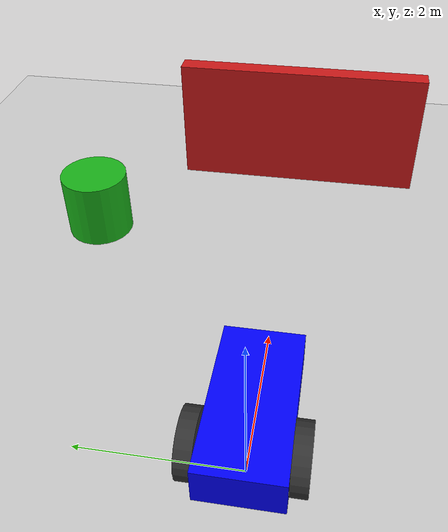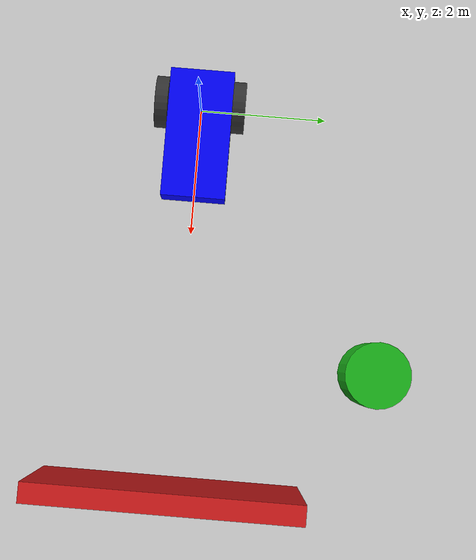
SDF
<?xml version="1.0" ?>
<sdf version="1.8">
  <world name="mundo_sensores">

    <!-- Física: cada cuánto avanza el tiempo de simulación. -->
    <physics name="1ms" type="ignored">
      <max_step_size>0.001</max_step_size>
      <real_time_factor>1.0</real_time_factor>
    </physics>

    <!-- ====== SISTEMAS DEL MUNDO ======================================= -->
    <!-- Motor de física: integra el movimiento de todos los cuerpos.      -->
    <plugin filename="ignition-gazebo-physics-system"
            name="ignition::gazebo::systems::Physics">
    </plugin>
    <!-- Procesa comandos del usuario (crear/borrar/mover modelos).        -->
    <plugin filename="ignition-gazebo-user-commands-system"
            name="ignition::gazebo::systems::UserCommands">
    </plugin>
    <!-- Difunde el estado de la escena a la GUI (para verlo en pantalla). -->
    <plugin filename="ignition-gazebo-scene-broadcaster-system"
            name="ignition::gazebo::systems::SceneBroadcaster">
    </plugin>

    <!-- ¡NUEVO! Sistema de SENSORES: sin esto la cámara y el LIDAR NO
         publican nada (necesitan renderizar la escena con ogre2). -->
    <plugin filename="ignition-gazebo-sensors-system"
            name="ignition::gazebo::systems::Sensors">
      <render_engine>ogre2</render_engine>
    </plugin>

    <plugin filename="ignition-gazebo-imu-system"
            name="ignition::gazebo::systems::Imu">
    </plugin>

    <!-- Luz tipo sol: ilumina y proyecta sombras (la cámara necesita luz). -->
    <light type="directional" name="sol">
      <cast_shadows>true</cast_shadows>
      <pose>0 0 10 0 0 0</pose>
      <diffuse>0.8 0.8 0.8 1</diffuse>
      <specular>0.2 0.2 0.2 1</specular>
      <direction>-0.5 0.1 -0.9</direction>
    </light>

    <!-- Suelo: un plano infinito sobre el que rueda el robot. -->
    <model name="suelo">
      <static>true</static>
      <link name="link">
        <collision name="collision">
          <geometry>
            <plane><normal>0 0 1</normal><size>100 100</size></plane>
          </geometry>
        </collision>
        <visual name="visual">
          <geometry>
            <plane><normal>0 0 1</normal><size>100 100</size></plane>
          </geometry>
          <material>
            <ambient>0.8 0.8 0.8 1</ambient>
            <diffuse>0.8 0.8 0.8 1</diffuse>
          </material>
        </visual>
      </link>
    </model>

    <!-- ====== OBSTÁCULOS: algo que VER y MEDIR ========================= -->
    <!-- Sin obstáculos, la cámara ve gris y el LIDAR da "infinito". Estos
         objetos hacen que los sensores tengan algo que reportar.          -->

    <!-- Pared roja al frente del robot (la cámara la verá; el LIDAR la mide). -->
    <model name="pared_roja">
      <static>true</static>
      <pose>6 0 1 0 0 0</pose>
      <link name="link">
        <collision name="collision">
          <geometry><box><size>0.3 4 2</size></box></geometry>
        </collision>
        <visual name="visual">
          <geometry><box><size>0.3 4 2</size></box></geometry>
          <material>
            <ambient>0.8 0.1 0.1 1</ambient>
            <diffuse>0.8 0.1 0.1 1</diffuse>
          </material>
        </visual>
      </link>
    </model>

    <!-- Cilindro verde a un costado (otro eco para el LIDAR). -->
    <model name="cilindro_verde">
      <static>true</static>
      <pose>4 3 0.5 0 0 0</pose>
      <link name="link">
        <collision name="collision">
          <geometry><cylinder><radius>0.5</radius><length>1.0</length></cylinder></geometry>
        </collision>
        <visual name="visual">
          <geometry><cylinder><radius>0.5</radius><length>1.0</length></cylinder></geometry>
          <material>
            <ambient>0.1 0.7 0.1 1</ambient>
            <diffuse>0.1 0.7 0.1 1</diffuse>
          </material>
        </visual>
      </link>
    </model>

    <!-- ====== EL ROBOT (el mismo de la clase pasada) =================== -->
    <model name="robot_azul" canonical_link="chasis">
      <pose>0 0 0 0 0 0</pose>

      <!-- CHASIS: cuerpo principal. Aquí colgaremos los sensores. -->
      <link name="chasis">
        <pose relative_to="__model__">0.5 0 0.4 0 0 0</pose>

        <inertial>
          <mass>1.14395</mass>
          <inertia>
            <ixx>0.126164</ixx>
            <iyy>0.416519</iyy>
            <izz>0.481014</izz>
            <ixy>0</ixy><ixz>0</ixz><iyz>0</iyz>
          </inertia>
        </inertial>

        <visual name="visual">
          <geometry><box><size>2.0 1.0 0.5</size></box></geometry>
          <material>
            <ambient>0.0 0.0 1.0 1</ambient>
            <diffuse>0.0 0.0 1.0 1</diffuse>
            <specular>0.0 0.0 1.0 1</specular>
          </material>
        </visual>

        <collision name="collision">
          <geometry><box><size>2.0 1.0 0.5</size></box></geometry>
        </collision>

        <!-- SENSOR 1: CÁMARA RGB                                          -->
        <!-- Va en la cara delantera del chasis (+X local), mirando al     -->
        <!-- frente. El eje óptico de la cámara apunta por su +X.          -->
        <sensor name="camara_rgb" type="camera">
          <pose>1.0 0 0.2 0 0 0</pose>   <!-- al frente y un poco arriba -->
          <topic>camara</topic>          <!-- gz topic: /camara -->
          <update_rate>30</update_rate>  <!-- 30 imágenes por segundo -->
          <always_on>1</always_on>
          <visualize>true</visualize>
          <camera>
            <horizontal_fov>1.047</horizontal_fov>   <!-- ~60° de apertura -->
            <image>
              <width>640</width>
              <height>480</height>
              <format>R8G8B8</format>                <!-- color RGB de 8 bits -->
            </image>
            <clip>
              <near>0.1</near>   <!-- más cerca de 0.1 m no se ve -->
              <far>100</far>     <!-- más lejos de 100 m no se ve -->
            </clip>
          </camera>
        </sensor>

        <!-- SENSOR 2: LIDAR 2D (gpu_lidar)                                -->
        <!-- Va arriba del chasis. Barre un abanico horizontal alrededor   -->
        <!-- de su +X y devuelve la distancia a lo que toca cada rayo.     -->
        <sensor name="lidar_2d" type="gpu_lidar">
          <pose>0 0 0.4 0 0 0</pose>     <!-- sobre el techo del chasis -->
          <topic>escaner</topic>         <!-- gz topic: /escaner -->
          <update_rate>10</update_rate>  <!-- 10 barridos por segundo -->
          <always_on>1</always_on>
          <visualize>true</visualize>
          <lidar>
            <scan>
              <horizontal>
                <samples>360</samples>        <!-- 360 rayos por barrido -->
                <resolution>1</resolution>
                <min_angle>-3.14159</min_angle>
                <max_angle>3.14159</max_angle>   <!-- +180° (vuelta completa) -->
              </horizontal>
              <vertical>
                <samples>1</samples>          <!-- 1 sola fila = LIDAR 2D -->
                <resolution>1</resolution>
                <min_angle>0</min_angle>
                <max_angle>0</max_angle>
              </vertical>
            </scan>
            <range>
              <min>0.12</min>      <!-- distancia mínima medible -->
              <max>12.0</max>      <!-- distancia máxima medible -->
              <resolution>0.01</resolution>
            </range>
          </lidar>
        </sensor>

        <!-- SENSOR 3: IMU                                                 -->
        <!-- No "ve" nada: siente la aceleración lineal y la velocidad     -->
        <!-- angular del chasis. Le añadimos un poco de RUIDO para que se  -->
        <!-- parezca a un sensor real (un IMU perfecto no existe).         -->
        <sensor name="imu_sensor" type="imu">
          <pose>0 0 0 0 0 0</pose>       <!-- en el centro del chasis -->
          <topic>imu</topic>             <!-- gz topic: /imu -->
          <update_rate>100</update_rate> <!-- 100 muestras por segundo -->
          <always_on>1</always_on>
          <imu>
            <angular_velocity>
              <x><noise type="gaussian"><mean>0</mean><stddev>0.009</stddev></noise></x>
              <y><noise type="gaussian"><mean>0</mean><stddev>0.009</stddev></noise></y>
              <z><noise type="gaussian"><mean>0</mean><stddev>0.009</stddev></noise></z>
            </angular_velocity>
            <linear_acceleration>
              <x><noise type="gaussian"><mean>0</mean><stddev>0.021</stddev></noise></x>
              <y><noise type="gaussian"><mean>0</mean><stddev>0.021</stddev></noise></y>
              <z><noise type="gaussian"><mean>0</mean><stddev>0.021</stddev></noise></z>
            </linear_acceleration>
          </imu>
        </sensor>
      </link>

      <!-- RUEDA IZQUIERDA -->
      <link name="rueda_izquierda">
        <pose relative_to="chasis">-0.5 0.6 0 -1.5707 0 0</pose>
        <inertial>
          <mass>1</mass>
          <inertia>
            <ixx>0.145833</ixx>
            <iyy>0.145833</iyy>
            <izz>0.125</izz>
            <ixy>0</ixy><ixz>0</ixz><iyz>0</iyz>
          </inertia>
        </inertial>
        <visual name="visual">
          <geometry><cylinder><radius>0.4</radius><length>0.2</length></cylinder></geometry>
          <material>
            <ambient>0.2 0.2 0.2 1</ambient>
            <diffuse>0.2 0.2 0.2 1</diffuse>
          </material>
        </visual>
        <collision name="collision">
          <geometry><cylinder><radius>0.4</radius><length>0.2</length></cylinder></geometry>
        </collision>
      </link>

      <!-- RUEDA DERECHA -->
      <link name="rueda_derecha">
        <pose relative_to="chasis">-0.5 -0.6 0 -1.5707 0 0</pose>
        <inertial>
          <mass>1</mass>
          <inertia>
            <ixx>0.145833</ixx>
            <iyy>0.145833</iyy>
            <izz>0.125</izz>
            <ixy>0</ixy><ixz>0</ixz><iyz>0</iyz>
          </inertia>
        </inertial>
        <visual name="visual">
          <geometry><cylinder><radius>0.4</radius><length>0.2</length></cylinder></geometry>
          <material>
            <ambient>0.2 0.2 0.2 1</ambient>
            <diffuse>0.2 0.2 0.2 1</diffuse>
          </material>
        </visual>
        <collision name="collision">
          <geometry><cylinder><radius>0.4</radius><length>0.2</length></cylinder></geometry>
        </collision>
      </link>

      <!-- RUEDA LOCA (caster) -->
      <frame name="marco_caster" attached_to="chasis">
        <pose>0.8 0 -0.2 0 0 0</pose>
      </frame>
      <link name="caster">
        <pose relative_to="marco_caster"/>
        <inertial>
          <mass>1</mass>
          <inertia>
            <ixx>0.1</ixx><iyy>0.1</iyy><izz>0.1</izz>
            <ixy>0</ixy><ixz>0</ixz><iyz>0</iyz>
          </inertia>
        </inertial>
        <visual name="visual">
          <geometry><sphere><radius>0.2</radius></sphere></geometry>
          <material>
            <ambient>0.2 0.2 0.2 1</ambient>
            <diffuse>0.2 0.2 0.2 1</diffuse>
          </material>
        </visual>
        <collision name="collision">
          <geometry><sphere><radius>0.2</radius></sphere></geometry>
        </collision>
      </link>

      <!-- ====== ARTICULACIONES (JOINTS) ====== -->
      <joint name="junta_rueda_izquierda" type="revolute">
        <parent>chasis</parent>
        <child>rueda_izquierda</child>
        <axis>
          <xyz>0 0 1</xyz>
          <limit>
            <lower>-1.79769e+308</lower>
            <upper>1.79769e+308</upper>
          </limit>
        </axis>
      </joint>

      <joint name="junta_rueda_derecha" type="revolute">
        <parent>chasis</parent>
        <child>rueda_derecha</child>
        <axis>
          <xyz>0 0 1</xyz>
          <limit>
            <lower>-1.79769e+308</lower>
            <upper>1.79769e+308</upper>
          </limit>
        </axis>
      </joint>

      <joint name="junta_caster" type="ball">
        <parent>chasis</parent>
        <child>caster</child>
      </joint>

      <plugin filename="ignition-gazebo-diff-drive-system"
              name="ignition::gazebo::systems::DiffDrive">
        <left_joint>junta_rueda_izquierda</left_joint>
        <right_joint>junta_rueda_derecha</right_joint>
        <wheel_separation>1.2</wheel_separation>
        <wheel_radius>0.4</wheel_radius>
        <odom_publish_frequency>10</odom_publish_frequency>
        <topic>cmd_vel</topic>
      </plugin>

    </model>
  </world>
</sdf>
